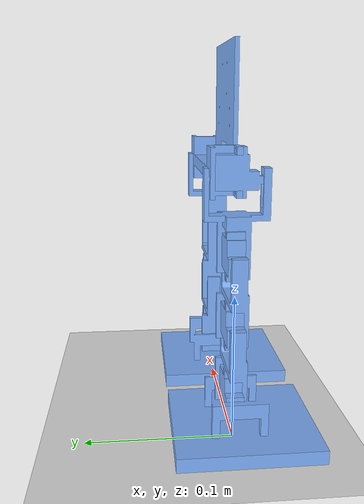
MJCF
<?xml version="1.0" ?>
<mujoco model="v3Robot_v18">
  <compiler angle="radian"/>

  <default>
    <mesh scale="0.001 0.001 0.001"/>
    <geom rgba="0.5 0.7 1.0 1" contype="0" conaffinity="0"/>
  <joint damping="0.002" range="-1.5 1.5" armature="0.0005"/>
    <position kp="5" kv="0.02" forcelimited="true" forcerange="-0.2 0.2" ctrllimited="true" ctrlrange="-1.57 1.57"/>
  </default>
  <asset>
    <mesh file="meshes/roll_body_derived_v5_1.stl" name="roll_body_derived_v5_1_mesh"/>
    <mesh file="meshes/servo_v10_1.stl" name="servo_v10_1_mesh"/>
    <mesh file="meshes/roll_attach_derived_v2_1.stl" name="roll_attach_derived_v2_1_mesh"/>
    <mesh file="meshes/servo_v10_3.stl" name="servo_v10_3_mesh"/>
    <mesh file="meshes/leg2Derived_v5_1.stl" name="leg2Derived_v5_1_mesh"/>
    <mesh file="meshes/servo_v10_5.stl" name="servo_v10_5_mesh"/>
    <mesh file="meshes/leg2Derived_v5_2.stl" name="leg2Derived_v5_2_mesh"/>
    <mesh file="meshes/servo_v10_7.stl" name="servo_v10_7_mesh"/>
    <mesh file="meshes/footDerived_v9_1.stl" name="footDerived_v9_1_mesh"/>
    <mesh file="meshes/servo_v10_2.stl" name="servo_v10_2_mesh"/>
    <mesh file="meshes/roll_attach_mirror_derived_v2_1.stl" name="roll_attach_mirror_derived_v2_1_mesh"/>
    <mesh file="meshes/servo_v10_4.stl" name="servo_v10_4_mesh"/>
    <mesh file="meshes/legMirrorDerived_v6_1.stl" name="legMirrorDerived_v6_1_mesh"/>
    <mesh file="meshes/servo_v10_6.stl" name="servo_v10_6_mesh"/>
    <mesh file="meshes/legMirrorDerived_v6_2.stl" name="legMirrorDerived_v6_2_mesh"/>
    <mesh file="meshes/servo_v10_8.stl" name="servo_v10_8_mesh"/>
    <mesh file="meshes/footDerived_v9(Mirror)_1.stl" name="footDerived_v9(Mirror)_1_mesh"/>
  </asset>
  <actuator>
    <position name="roll_attach_derived_v2_1Revolute_4" joint="roll_attach_derived_v2_1Revolute_4"/>
    <position name="leg2Derived_v5_1Revolute_8" joint="leg2Derived_v5_1Revolute_8"/>
    <position name="leg2Derived_v5_2Revolute_12" joint="leg2Derived_v5_2Revolute_12"/>
    <position name="footDerived_v9_1Revolute_16" joint="footDerived_v9_1Revolute_16"/>
    <position name="roll_attach_mirror_derived_v2_1Revolute_18" joint="roll_attach_mirror_derived_v2_1Revolute_18"/>
    <position name="legMirrorDerived_v6_1Revolute_9" joint="legMirrorDerived_v6_1Revolute_9"/>
    <position name="legMirrorDerived_v6_2Revolute_13" joint="legMirrorDerived_v6_2Revolute_13"/>
    <position name="footDerived_v9(Mirror)_1Revolute_20" joint="footDerived_v9(Mirror)_1Revolute_20"/>
  </actuator>
  <worldbody>
    <geom name="floor" size="0 0 .05" type="plane" condim="3" rgba="0.9 0.9 0.9 1" contype="1" conaffinity="1"/>
    <light mode="targetbodycom" target="body" diffuse=".8 .8 .8" specular="0.3 0.3 0.3" pos="0 -6 4" cutoff="30"/>
    <body name="body" pos="0 0 0.1444">
      <freejoint name="root"/>
      <geom density="248" type="mesh" mesh="roll_body_derived_v5_1_mesh"/>
      <body name="servo_v10_1">
        <geom mass="0.013" type="mesh" mesh="servo_v10_1_mesh"/>
        <body name="roll_attach_derived_v2_1">
          <joint axis="0 1 0" name="roll_attach_derived_v2_1Revolute_4" type="hinge" pos="0.0116 -0.0208 0.0302"/>
          <geom density="248" type="mesh" mesh="roll_attach_derived_v2_1_mesh"/>
          <body name="servo_v10_3">
            <geom mass="0.013" type="mesh" mesh="servo_v10_3_mesh"/>
            <body name="leg2Derived_v5_1">
              <joint axis="1 0 0" name="leg2Derived_v5_1Revolute_8" type="hinge" pos="-0.0149 -0.0000 -0.0222"/>
              <geom density="248" type="mesh" mesh="leg2Derived_v5_1_mesh"/>
              <body name="servo_v10_5">
                <geom mass="0.013" type="mesh" mesh="servo_v10_5_mesh"/>
                <body name="leg2Derived_v5_2">
                  <joint axis="1 0 0" name="leg2Derived_v5_2Revolute_12" type="hinge" pos="-0.0146 0.0000 -0.0696"/>
                  <geom density="248" type="mesh" mesh="leg2Derived_v5_2_mesh"/>
                  <body name="servo_v10_7">
                    <geom mass="0.013" type="mesh" mesh="servo_v10_7_mesh"/>
                    <body name="footDerived_v9_1">
                      <joint axis="1 0 0" name="footDerived_v9_1Revolute_16" type="hinge" pos="-0.0143 0.0000 -0.1170"/>
                      <geom density="500" type="mesh" mesh="footDerived_v9_1_mesh" contype="1" conaffinity="1"/>
                      <site name="left_foot_center" pos="0.006466 -0.0075 -0.14504" size="0.003" type="sphere" rgba="1 0 0 1"/>
                    </body>
                  </body>
                </body>
              </body>
            </body>
          </body>
        </body>
      </body>
      <body name="servo_v10_2">
        <geom mass="0.013" type="mesh" mesh="servo_v10_2_mesh"/>
        <body name="roll_attach_mirror_derived_v2_1">
          <joint axis="0 1 0" name="roll_attach_mirror_derived_v2_1Revolute_18" type="hinge" pos="0.1116 -0.0208 0.0302"/>
          <geom density="248" type="mesh" mesh="roll_attach_mirror_derived_v2_1_mesh"/>
          <body name="servo_v10_4">
            <geom mass="0.013" type="mesh" mesh="servo_v10_4_mesh"/>
            <body name="legMirrorDerived_v6_1">
              <joint axis="1 0 0" name="legMirrorDerived_v6_1Revolute_9" type="hinge" pos="0.1381 0.0000 -0.0222"/>
              <geom density="248" type="mesh" mesh="legMirrorDerived_v6_1_mesh"/>
              <body name="servo_v10_6">
                <geom mass="0.013" type="mesh" mesh="servo_v10_6_mesh"/>
                <body name="legMirrorDerived_v6_2">
                  <joint axis="1 0 0" name="legMirrorDerived_v6_2Revolute_13" type="hinge" pos="0.1378 0.0000 -0.0696"/>
                  <geom density="248" type="mesh" mesh="legMirrorDerived_v6_2_mesh"/>
                  <body name="servo_v10_8">
                    <geom mass="0.013" type="mesh" mesh="servo_v10_8_mesh"/>
                    <body name="footDerived_v9(Mirror)_1">
                      <joint axis="1 0 0" name="footDerived_v9(Mirror)_1Revolute_20" type="hinge" pos="0.1375 0.0000 -0.1170"/>
                      <geom density="500" type="mesh" mesh="footDerived_v9(Mirror)_1_mesh" contype="1" conaffinity="1"/>
                      <site name="right_foot_center" pos="0.116666 -0.0075 -0.14504" size="0.003" type="sphere" rgba="1 0 0 1"/>
                    </body>
                  </body>
                </body>
              </body>
            </body>
          </body>
        </body>
      </body>
    </body>
    <camera name="track" mode="trackcom" pos="0 -2.1 0.5" xyaxes="1 0 0 0 0.2 1" target="body"/>
  </worldbody>

</mujoco>
